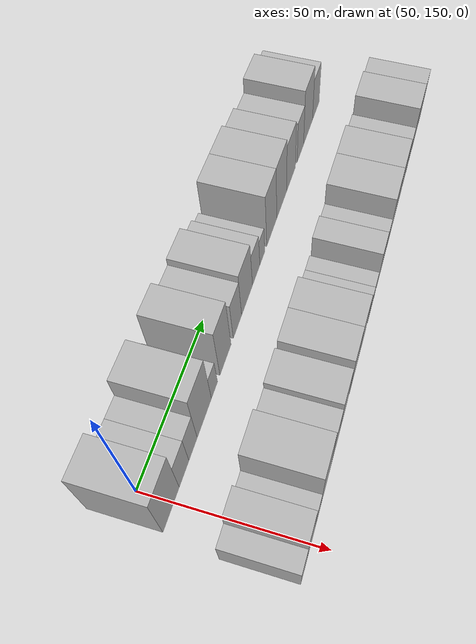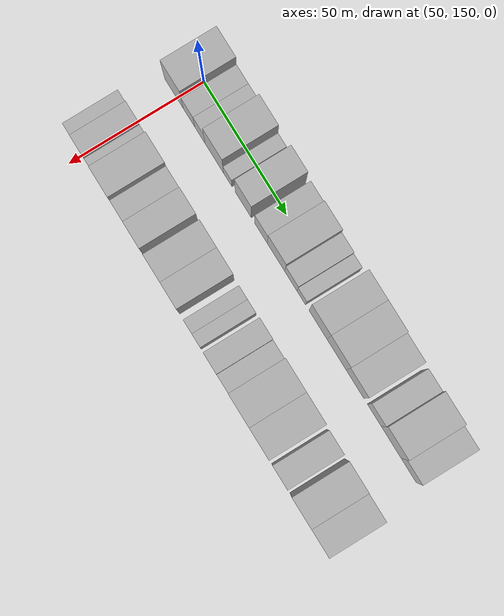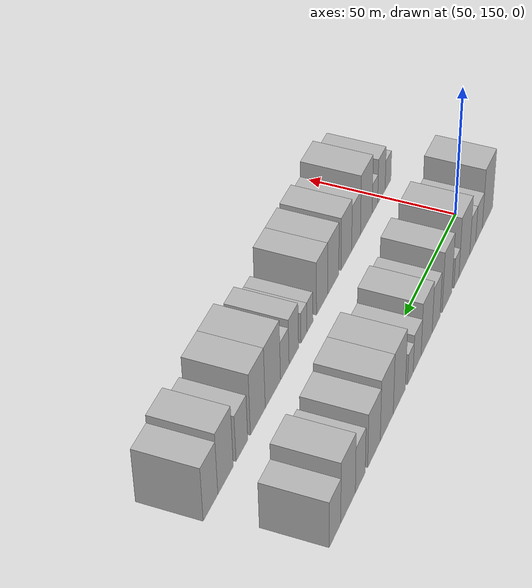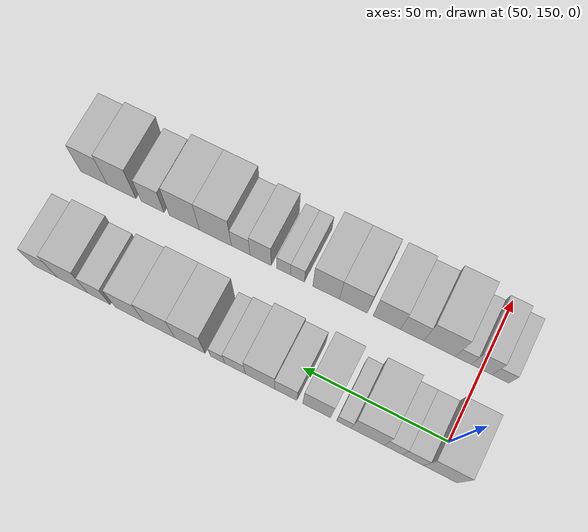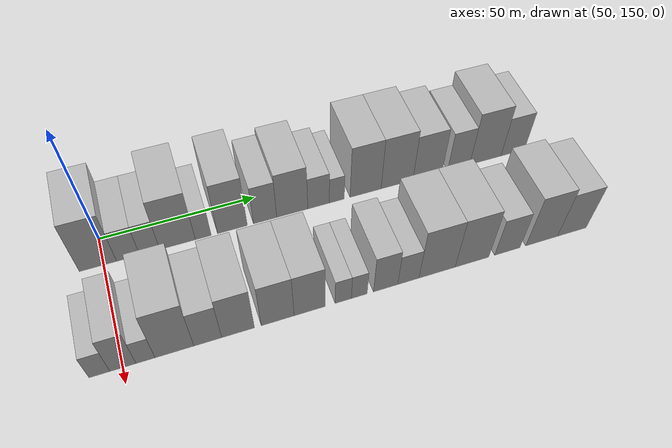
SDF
<sdf version="1.6">
 <world name="default">
  <model name="building_48">
   <static>1</static>
   <pose>50.0000 148.3517 0 0.000000 0.000000 0.000000</pose>
   <link name="link">
    <pose>0 0 12.00 0 0 0</pose>
    <collision name="collision"><geometry><box><size>20.0000 11.2443 24.0000</size></box></geometry></collision>
    <visual name="visual">
     <cast_shadows>0</cast_shadows>
     <geometry><box><size>20.0000 11.2443 24.0000</size></box></geometry>
     <material>
      <script>
       <uri>model://HANNAS_wall/materials/scripts</uri>
       <uri>model://HANNAS_wall/materials/textures</uri>
       <name>vrc/HANNAS_wall</name>
      </script>
     </material>
    </visual>
   </link>
  </model>
  <model name="building_49">
   <static>1</static>
   <pose>50.0000 157.4741 0 0.000000 0.000000 0.000000</pose>
   <link name="link">
    <pose>0 0 7.50 0 0 0</pose>
    <collision name="collision"><geometry><box><size>20.0000 7.0004 15.0000</size></box></geometry></collision>
    <visual name="visual">
     <cast_shadows>0</cast_shadows>
     <geometry><box><size>20.0000 7.0004 15.0000</size></box></geometry>
     <material>
      <script>
       <uri>model://HANNAS_wall/materials/scripts</uri>
       <uri>model://HANNAS_wall/materials/textures</uri>
       <name>vrc/HANNAS_wall</name>
      </script>
     </material>
    </visual>
   </link>
  </model>
  <model name="building_50">
   <static>1</static>
   <pose>50.0000 164.0814 0 0.000000 0.000000 0.000000</pose>
   <link name="link">
    <pose>0 0 7.50 0 0 0</pose>
    <collision name="collision"><geometry><box><size>20.0000 6.2141 15.0000</size></box></geometry></collision>
    <visual name="visual">
     <cast_shadows>0</cast_shadows>
     <geometry><box><size>20.0000 6.2141 15.0000</size></box></geometry>
     <material>
      <script>
       <uri>model://HANNAS_wall/materials/scripts</uri>
       <uri>model://HANNAS_wall/materials/textures</uri>
       <name>vrc/HANNAS_wall</name>
      </script>
     </material>
    </visual>
   </link>
  </model>
  <model name="building_51">
   <static>1</static>
   <pose>50.0000 172.7719 0 0.000000 0.000000 0.000000</pose>
   <link name="link">
    <pose>0 0 12.00 0 0 0</pose>
    <collision name="collision"><geometry><box><size>20.0000 11.1669 24.0000</size></box></geometry></collision>
    <visual name="visual">
     <cast_shadows>0</cast_shadows>
     <geometry><box><size>20.0000 11.1669 24.0000</size></box></geometry>
     <material>
      <script>
       <uri>model://HANNAS_wall/materials/scripts</uri>
       <uri>model://HANNAS_wall/materials/textures</uri>
       <name>vrc/HANNAS_wall</name>
      </script>
     </material>
    </visual>
   </link>
  </model>
  <model name="building_52">
   <static>1</static>
   <pose>50.0000 180.8768 0 0.000000 0.000000 0.000000</pose>
   <link name="link">
    <pose>0 0 6.00 0 0 0</pose>
    <collision name="collision"><geometry><box><size>20.0000 5.0429 12.0000</size></box></geometry></collision>
    <visual name="visual">
     <cast_shadows>0</cast_shadows>
     <geometry><box><size>20.0000 5.0429 12.0000</size></box></geometry>
     <material>
      <script>
       <uri>model://HANNAS_wall/materials/scripts</uri>
       <uri>model://HANNAS_wall/materials/textures</uri>
       <name>vrc/HANNAS_wall</name>
      </script>
     </material>
    </visual>
   </link>
  </model>
  <model name="building_53">
   <static>1</static>
   <pose>50.0000 190.2088 0 0.000000 0.000000 0.000000</pose>
   <link name="link">
    <pose>0 0 12.00 0 0 0</pose>
    <collision name="collision"><geometry><box><size>20.0000 9.6211 24.0000</size></box></geometry></collision>
    <visual name="visual">
     <cast_shadows>0</cast_shadows>
     <geometry><box><size>20.0000 9.6211 24.0000</size></box></geometry>
     <material>
      <script>
       <uri>model://HANNAS_wall/materials/scripts</uri>
       <uri>model://HANNAS_wall/materials/textures</uri>
       <name>vrc/HANNAS_wall</name>
      </script>
     </material>
    </visual>
   </link>
  </model>
  <model name="building_54">
   <static>1</static>
   <pose>50.0000 200.8374 0 0.000000 0.000000 0.000000</pose>
   <link name="link">
    <pose>0 0 9.00 0 0 0</pose>
    <collision name="collision"><geometry><box><size>20.0000 7.6361 18.0000</size></box></geometry></collision>
    <visual name="visual">
     <cast_shadows>0</cast_shadows>
     <geometry><box><size>20.0000 7.6361 18.0000</size></box></geometry>
     <material>
      <script>
       <uri>model://HANNAS_wall/materials/scripts</uri>
       <uri>model://HANNAS_wall/materials/textures</uri>
       <name>vrc/HANNAS_wall</name>
      </script>
     </material>
    </visual>
   </link>
  </model>
  <model name="building_55">
   <static>1</static>
   <pose>50.0000 209.8259 0 0.000000 0.000000 0.000000</pose>
   <link name="link">
    <pose>0 0 10.50 0 0 0</pose>
    <collision name="collision"><geometry><box><size>20.0000 10.3408 21.0000</size></box></geometry></collision>
    <visual name="visual">
     <cast_shadows>0</cast_shadows>
     <geometry><box><size>20.0000 10.3408 21.0000</size></box></geometry>
     <material>
      <script>
       <uri>model://HANNAS_wall/materials/scripts</uri>
       <uri>model://HANNAS_wall/materials/textures</uri>
       <name>vrc/HANNAS_wall</name>
      </script>
     </material>
    </visual>
   </link>
  </model>
  <model name="building_56">
   <static>1</static>
   <pose>50.0000 218.6355 0 0.000000 0.000000 0.000000</pose>
   <link name="link">
    <pose>0 0 7.50 0 0 0</pose>
    <collision name="collision"><geometry><box><size>20.0000 7.2785 15.0000</size></box></geometry></collision>
    <visual name="visual">
     <cast_shadows>0</cast_shadows>
     <geometry><box><size>20.0000 7.2785 15.0000</size></box></geometry>
     <material>
      <script>
       <uri>model://HANNAS_wall/materials/scripts</uri>
       <uri>model://HANNAS_wall/materials/textures</uri>
       <name>vrc/HANNAS_wall</name>
      </script>
     </material>
    </visual>
   </link>
  </model>
  <model name="building_57">
   <static>1</static>
   <pose>50.0000 224.8063 0 0.000000 0.000000 0.000000</pose>
   <link name="link">
    <pose>0 0 6.00 0 0 0</pose>
    <collision name="collision"><geometry><box><size>20.0000 5.0629 12.0000</size></box></geometry></collision>
    <visual name="visual">
     <cast_shadows>0</cast_shadows>
     <geometry><box><size>20.0000 5.0629 12.0000</size></box></geometry>
     <material>
      <script>
       <uri>model://HANNAS_wall/materials/scripts</uri>
       <uri>model://HANNAS_wall/materials/textures</uri>
       <name>vrc/HANNAS_wall</name>
      </script>
     </material>
    </visual>
   </link>
  </model>
  <model name="building_58">
   <static>1</static>
   <pose>50.0000 234.7085 0 0.000000 0.000000 0.000000</pose>
   <link name="link">
    <pose>0 0 12.00 0 0 0</pose>
    <collision name="collision"><geometry><box><size>20.0000 10.7415 24.0000</size></box></geometry></collision>
    <visual name="visual">
     <cast_shadows>0</cast_shadows>
     <geometry><box><size>20.0000 10.7415 24.0000</size></box></geometry>
     <material>
      <script>
       <uri>model://HANNAS_wall/materials/scripts</uri>
       <uri>model://HANNAS_wall/materials/textures</uri>
       <name>vrc/HANNAS_wall</name>
      </script>
     </material>
    </visual>
   </link>
  </model>
  <model name="building_59">
   <static>1</static>
   <pose>50.0000 245.6896 0 0.000000 0.000000 0.000000</pose>
   <link name="link">
    <pose>0 0 12.00 0 0 0</pose>
    <collision name="collision"><geometry><box><size>20.0000 11.2207 24.0000</size></box></geometry></collision>
    <visual name="visual">
     <cast_shadows>0</cast_shadows>
     <geometry><box><size>20.0000 11.2207 24.0000</size></box></geometry>
     <material>
      <script>
       <uri>model://HANNAS_wall/materials/scripts</uri>
       <uri>model://HANNAS_wall/materials/textures</uri>
       <name>vrc/HANNAS_wall</name>
      </script>
     </material>
    </visual>
   </link>
  </model>
  <model name="building_60">
   <static>1</static>
   <pose>50.0000 256.5282 0 0.000000 0.000000 0.000000</pose>
   <link name="link">
    <pose>0 0 10.50 0 0 0</pose>
    <collision name="collision"><geometry><box><size>20.0000 10.4566 21.0000</size></box></geometry></collision>
    <visual name="visual">
     <cast_shadows>0</cast_shadows>
     <geometry><box><size>20.0000 10.4566 21.0000</size></box></geometry>
     <material>
      <script>
       <uri>model://HANNAS_wall/materials/scripts</uri>
       <uri>model://HANNAS_wall/materials/textures</uri>
       <name>vrc/HANNAS_wall</name>
      </script>
     </material>
    </visual>
   </link>
  </model>
  <model name="building_61">
   <static>1</static>
   <pose>50.0000 267.7824 0 0.000000 0.000000 0.000000</pose>
   <link name="link">
    <pose>0 0 9.00 0 0 0</pose>
    <collision name="collision"><geometry><box><size>20.0000 8.0516 18.0000</size></box></geometry></collision>
    <visual name="visual">
     <cast_shadows>0</cast_shadows>
     <geometry><box><size>20.0000 8.0516 18.0000</size></box></geometry>
     <material>
      <script>
       <uri>model://HANNAS_wall/materials/scripts</uri>
       <uri>model://HANNAS_wall/materials/textures</uri>
       <name>vrc/HANNAS_wall</name>
      </script>
     </material>
    </visual>
   </link>
  </model>
  <model name="building_62">
   <static>1</static>
   <pose>50.0000 277.5913 0 0.000000 0.000000 0.000000</pose>
   <link name="link">
    <pose>0 0 12.00 0 0 0</pose>
    <collision name="collision"><geometry><box><size>20.0000 11.5663 24.0000</size></box></geometry></collision>
    <visual name="visual">
     <cast_shadows>0</cast_shadows>
     <geometry><box><size>20.0000 11.5663 24.0000</size></box></geometry>
     <material>
      <script>
       <uri>model://HANNAS_wall/materials/scripts</uri>
       <uri>model://HANNAS_wall/materials/textures</uri>
       <name>vrc/HANNAS_wall</name>
      </script>
     </material>
    </visual>
   </link>
  </model>
  <model name="building_63">
   <static>1</static>
   <pose>50.0000 287.8205 0 0.000000 0.000000 0.000000</pose>
   <link name="link">
    <pose>0 0 9.00 0 0 0</pose>
    <collision name="collision"><geometry><box><size>20.0000 8.8919 18.0000</size></box></geometry></collision>
    <visual name="visual">
     <cast_shadows>0</cast_shadows>
     <geometry><box><size>20.0000 8.8919 18.0000</size></box></geometry>
     <material>
      <script>
       <uri>model://HANNAS_wall/materials/scripts</uri>
       <uri>model://HANNAS_wall/materials/textures</uri>
       <name>vrc/HANNAS_wall</name>
      </script>
     </material>
    </visual>
   </link>
  </model>
  <model name="building_113">
   <static>1</static>
   <pose>85.0000 143.5969 0 0.000000 0.000000 0.000000</pose>
   <link name="link">
    <pose>0 0 6.00 0 0 0</pose>
    <collision name="collision"><geometry><box><size>20.0000 5.7214 12.0000</size></box></geometry></collision>
    <visual name="visual">
     <cast_shadows>0</cast_shadows>
     <geometry><box><size>20.0000 5.7214 12.0000</size></box></geometry>
     <material>
      <script>
       <uri>model://HANNAS_wall/materials/scripts</uri>
       <uri>model://HANNAS_wall/materials/textures</uri>
       <name>vrc/HANNAS_wall</name>
      </script>
     </material>
    </visual>
   </link>
  </model>
  <model name="building_114">
   <static>1</static>
   <pose>85.0000 150.0671 0 0.000000 0.000000 0.000000</pose>
   <link name="link">
    <pose>0 0 9.00 0 0 0</pose>
    <collision name="collision"><geometry><box><size>20.0000 7.2189 18.0000</size></box></geometry></collision>
    <visual name="visual">
     <cast_shadows>0</cast_shadows>
     <geometry><box><size>20.0000 7.2189 18.0000</size></box></geometry>
     <material>
      <script>
       <uri>model://HANNAS_wall/materials/scripts</uri>
       <uri>model://HANNAS_wall/materials/textures</uri>
       <name>vrc/HANNAS_wall</name>
      </script>
     </material>
    </visual>
   </link>
  </model>
  <model name="building_115">
   <static>1</static>
   <pose>85.0000 156.3297 0 0.000000 0.000000 0.000000</pose>
   <link name="link">
    <pose>0 0 6.00 0 0 0</pose>
    <collision name="collision"><geometry><box><size>20.0000 5.3063 12.0000</size></box></geometry></collision>
    <visual name="visual">
     <cast_shadows>0</cast_shadows>
     <geometry><box><size>20.0000 5.3063 12.0000</size></box></geometry>
     <material>
      <script>
       <uri>model://HANNAS_wall/materials/scripts</uri>
       <uri>model://HANNAS_wall/materials/textures</uri>
       <name>vrc/HANNAS_wall</name>
      </script>
     </material>
    </visual>
   </link>
  </model>
  <model name="building_116">
   <static>1</static>
   <pose>85.0000 164.5100 0 0.000000 0.000000 0.000000</pose>
   <link name="link">
    <pose>0 0 12.00 0 0 0</pose>
    <collision name="collision"><geometry><box><size>20.0000 11.0542 24.0000</size></box></geometry></collision>
    <visual name="visual">
     <cast_shadows>0</cast_shadows>
     <geometry><box><size>20.0000 11.0542 24.0000</size></box></geometry>
     <material>
      <script>
       <uri>model://HANNAS_wall/materials/scripts</uri>
       <uri>model://HANNAS_wall/materials/textures</uri>
       <name>vrc/HANNAS_wall</name>
      </script>
     </material>
    </visual>
   </link>
  </model>
  <model name="building_117">
   <static>1</static>
   <pose>85.0000 174.0666 0 0.000000 0.000000 0.000000</pose>
   <link name="link">
    <pose>0 0 9.00 0 0 0</pose>
    <collision name="collision"><geometry><box><size>20.0000 8.0591 18.0000</size></box></geometry></collision>
    <visual name="visual">
     <cast_shadows>0</cast_shadows>
     <geometry><box><size>20.0000 8.0591 18.0000</size></box></geometry>
     <material>
      <script>
       <uri>model://HANNAS_wall/materials/scripts</uri>
       <uri>model://HANNAS_wall/materials/textures</uri>
       <name>vrc/HANNAS_wall</name>
      </script>
     </material>
    </visual>
   </link>
  </model>
  <model name="building_118">
   <static>1</static>
   <pose>85.0000 182.8969 0 0.000000 0.000000 0.000000</pose>
   <link name="link">
    <pose>0 0 10.50 0 0 0</pose>
    <collision name="collision"><geometry><box><size>20.0000 9.6016 21.0000</size></box></geometry></collision>
    <visual name="visual">
     <cast_shadows>0</cast_shadows>
     <geometry><box><size>20.0000 9.6016 21.0000</size></box></geometry>
     <material>
      <script>
       <uri>model://HANNAS_wall/materials/scripts</uri>
       <uri>model://HANNAS_wall/materials/textures</uri>
       <name>vrc/HANNAS_wall</name>
      </script>
     </material>
    </visual>
   </link>
  </model>
  <model name="building_119">
   <static>1</static>
   <pose>85.0000 194.6389 0 0.000000 0.000000 0.000000</pose>
   <link name="link">
    <pose>0 0 10.50 0 0 0</pose>
    <collision name="collision"><geometry><box><size>20.0000 9.8824 21.0000</size></box></geometry></collision>
    <visual name="visual">
     <cast_shadows>0</cast_shadows>
     <geometry><box><size>20.0000 9.8824 21.0000</size></box></geometry>
     <material>
      <script>
       <uri>model://HANNAS_wall/materials/scripts</uri>
       <uri>model://HANNAS_wall/materials/textures</uri>
       <name>vrc/HANNAS_wall</name>
      </script>
     </material>
    </visual>
   </link>
  </model>
  <model name="building_120">
   <static>1</static>
   <pose>85.0000 204.3396 0 0.000000 0.000000 0.000000</pose>
   <link name="link">
    <pose>0 0 10.50 0 0 0</pose>
    <collision name="collision"><geometry><box><size>20.0000 9.5189 21.0000</size></box></geometry></collision>
    <visual name="visual">
     <cast_shadows>0</cast_shadows>
     <geometry><box><size>20.0000 9.5189 21.0000</size></box></geometry>
     <material>
      <script>
       <uri>model://HANNAS_wall/materials/scripts</uri>
       <uri>model://HANNAS_wall/materials/textures</uri>
       <name>vrc/HANNAS_wall</name>
      </script>
     </material>
    </visual>
   </link>
  </model>
  <model name="building_121">
   <static>1</static>
   <pose>85.0000 214.6201 0 0.000000 0.000000 0.000000</pose>
   <link name="link">
    <pose>0 0 6.00 0 0 0</pose>
    <collision name="collision"><geometry><box><size>20.0000 5.0421 12.0000</size></box></geometry></collision>
    <visual name="visual">
     <cast_shadows>0</cast_shadows>
     <geometry><box><size>20.0000 5.0421 12.0000</size></box></geometry>
     <material>
      <script>
       <uri>model://HANNAS_wall/materials/scripts</uri>
       <uri>model://HANNAS_wall/materials/textures</uri>
       <name>vrc/HANNAS_wall</name>
      </script>
     </material>
    </visual>
   </link>
  </model>
  <model name="building_122">
   <static>1</static>
   <pose>85.0000 219.6144 0 0.000000 0.000000 0.000000</pose>
   <link name="link">
    <pose>0 0 6.00 0 0 0</pose>
    <collision name="collision"><geometry><box><size>20.0000 4.9465 12.0000</size></box></geometry></collision>
    <visual name="visual">
     <cast_shadows>0</cast_shadows>
     <geometry><box><size>20.0000 4.9465 12.0000</size></box></geometry>
     <material>
      <script>
       <uri>model://HANNAS_wall/materials/scripts</uri>
       <uri>model://HANNAS_wall/materials/textures</uri>
       <name>vrc/HANNAS_wall</name>
      </script>
     </material>
    </visual>
   </link>
  </model>
  <model name="building_123">
   <static>1</static>
   <pose>85.0000 227.9524 0 0.000000 0.000000 0.000000</pose>
   <link name="link">
    <pose>0 0 9.00 0 0 0</pose>
    <collision name="collision"><geometry><box><size>20.0000 7.7295 18.0000</size></box></geometry></collision>
    <visual name="visual">
     <cast_shadows>0</cast_shadows>
     <geometry><box><size>20.0000 7.7295 18.0000</size></box></geometry>
     <material>
      <script>
       <uri>model://HANNAS_wall/materials/scripts</uri>
       <uri>model://HANNAS_wall/materials/textures</uri>
       <name>vrc/HANNAS_wall</name>
      </script>
     </material>
    </visual>
   </link>
  </model>
  <model name="building_124">
   <static>1</static>
   <pose>85.0000 235.2261 0 0.000000 0.000000 0.000000</pose>
   <link name="link">
    <pose>0 0 7.50 0 0 0</pose>
    <collision name="collision"><geometry><box><size>20.0000 6.8179 15.0000</size></box></geometry></collision>
    <visual name="visual">
     <cast_shadows>0</cast_shadows>
     <geometry><box><size>20.0000 6.8179 15.0000</size></box></geometry>
     <material>
      <script>
       <uri>model://HANNAS_wall/materials/scripts</uri>
       <uri>model://HANNAS_wall/materials/textures</uri>
       <name>vrc/HANNAS_wall</name>
      </script>
     </material>
    </visual>
   </link>
  </model>
  <model name="building_125">
   <static>1</static>
   <pose>85.0000 244.5659 0 0.000000 0.000000 0.000000</pose>
   <link name="link">
    <pose>0 0 12.00 0 0 0</pose>
    <collision name="collision"><geometry><box><size>20.0000 11.8618 24.0000</size></box></geometry></collision>
    <visual name="visual">
     <cast_shadows>0</cast_shadows>
     <geometry><box><size>20.0000 11.8618 24.0000</size></box></geometry>
     <material>
      <script>
       <uri>model://HANNAS_wall/materials/scripts</uri>
       <uri>model://HANNAS_wall/materials/textures</uri>
       <name>vrc/HANNAS_wall</name>
      </script>
     </material>
    </visual>
   </link>
  </model>
  <model name="building_126">
   <static>1</static>
   <pose>85.0000 256.1086 0 0.000000 0.000000 0.000000</pose>
   <link name="link">
    <pose>0 0 12.00 0 0 0</pose>
    <collision name="collision"><geometry><box><size>20.0000 11.2236 24.0000</size></box></geometry></collision>
    <visual name="visual">
     <cast_shadows>0</cast_shadows>
     <geometry><box><size>20.0000 11.2236 24.0000</size></box></geometry>
     <material>
      <script>
       <uri>model://HANNAS_wall/materials/scripts</uri>
       <uri>model://HANNAS_wall/materials/textures</uri>
       <name>vrc/HANNAS_wall</name>
      </script>
     </material>
    </visual>
   </link>
  </model>
  <model name="building_127">
   <static>1</static>
   <pose>85.0000 268.0243 0 0.000000 0.000000 0.000000</pose>
   <link name="link">
    <pose>0 0 9.00 0 0 0</pose>
    <collision name="collision"><geometry><box><size>20.0000 8.6079 18.0000</size></box></geometry></collision>
    <visual name="visual">
     <cast_shadows>0</cast_shadows>
     <geometry><box><size>20.0000 8.6079 18.0000</size></box></geometry>
     <material>
      <script>
       <uri>model://HANNAS_wall/materials/scripts</uri>
       <uri>model://HANNAS_wall/materials/textures</uri>
       <name>vrc/HANNAS_wall</name>
      </script>
     </material>
    </visual>
   </link>
  </model>
  <model name="building_128">
   <static>1</static>
   <pose>85.0000 279.8173 0 0.000000 0.000000 0.000000</pose>
   <link name="link">
    <pose>0 0 12.00 0 0 0</pose>
    <collision name="collision"><geometry><box><size>20.0000 10.9780 24.0000</size></box></geometry></collision>
    <visual name="visual">
     <cast_shadows>0</cast_shadows>
     <geometry><box><size>20.0000 10.9780 24.0000</size></box></geometry>
     <material>
      <script>
       <uri>model://HANNAS_wall/materials/scripts</uri>
       <uri>model://HANNAS_wall/materials/textures</uri>
       <name>vrc/HANNAS_wall</name>
      </script>
     </material>
    </visual>
   </link>
  </model>
  <model name="building_129">
   <static>1</static>
   <pose>85.0000 290.3953 0 0.000000 0.000000 0.000000</pose>
   <link name="link">
    <pose>0 0 10.50 0 0 0</pose>
    <collision name="collision"><geometry><box><size>20.0000 10.1778 21.0000</size></box></geometry></collision>
    <visual name="visual">
     <cast_shadows>0</cast_shadows>
     <geometry><box><size>20.0000 10.1778 21.0000</size></box></geometry>
     <material>
      <script>
       <uri>model://HANNAS_wall/materials/scripts</uri>
       <uri>model://HANNAS_wall/materials/textures</uri>
       <name>vrc/HANNAS_wall</name>
      </script>
     </material>
    </visual>
   </link>
  </model>
 </world>
</sdf>
